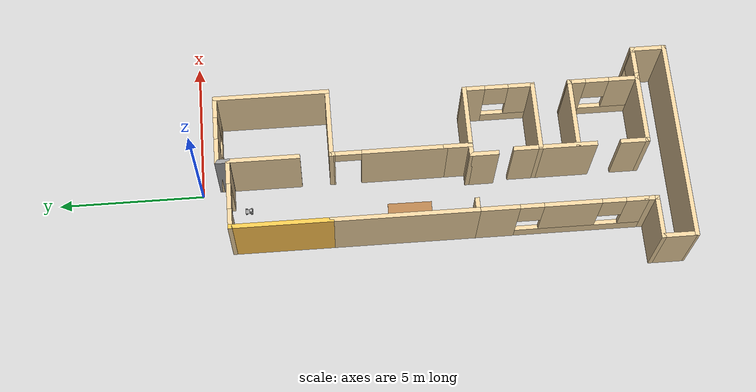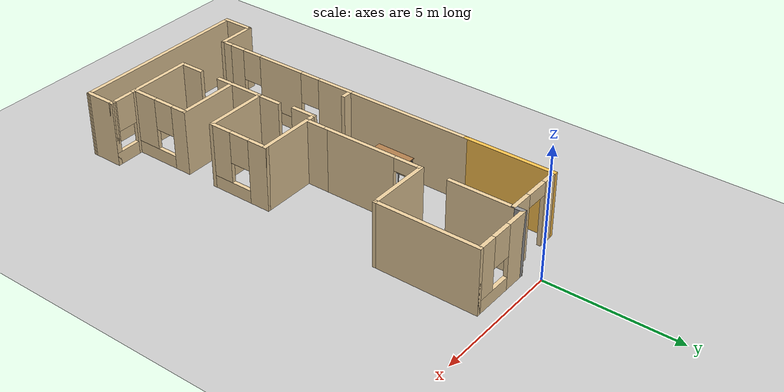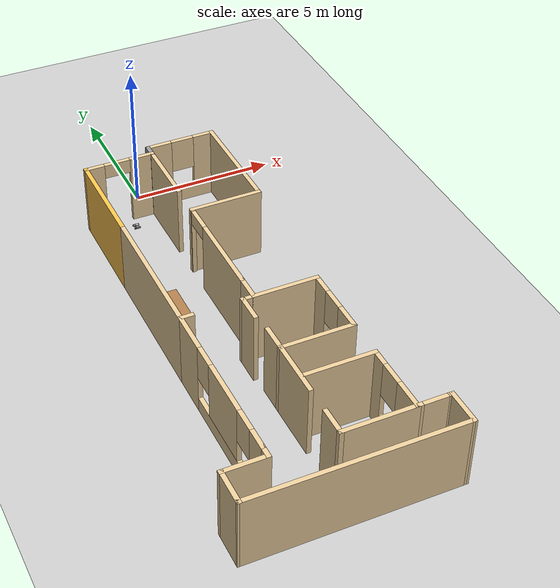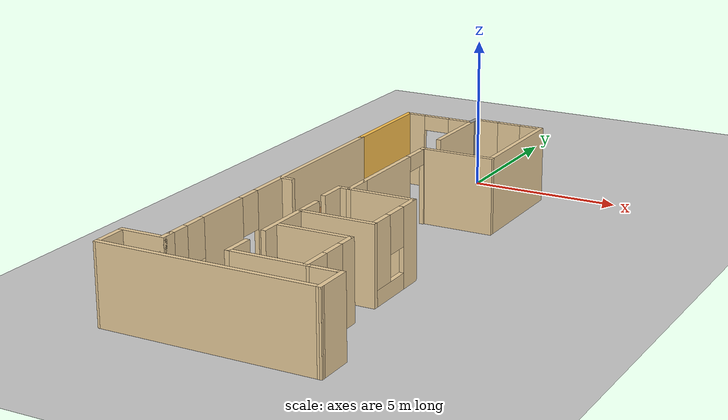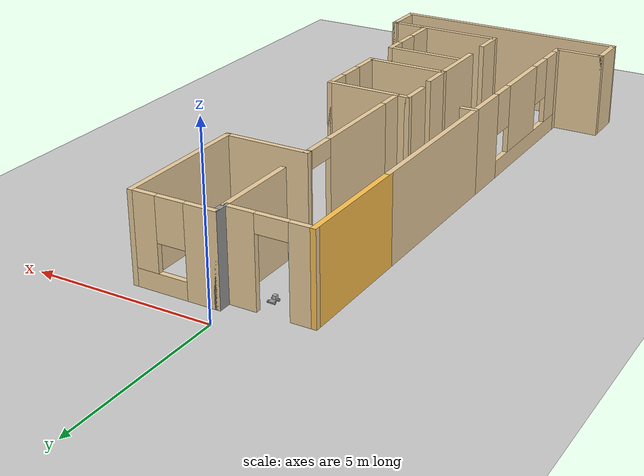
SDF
<sdf version="1.6">
 <world name="default">
  <model name="ground_plane">
   <static>1</static>
   <link name="link">
    <collision name="collision">
     <geometry><plane><normal>0 0 1</normal><size>100 100</size></plane></geometry>
     <surface><friction><ode><mu>100</mu><mu2>50</mu2></ode></friction></surface>
    </collision>
    <visual name="visual">
     <cast_shadows>0</cast_shadows>
     <geometry><plane><normal>0 0 1</normal><size>100 100</size></plane></geometry>
     <material>
      <script><uri>file://media/materials/scripts/gazebo.material</uri><name>Gazebo/Grey</name></script>
     </material>
    </visual>
   </link>
  </model>
  <model name="my_appartment">
   <pose>-0.015 -8.49511 0 0 -0 0</pose>
   <link name="Wall_1">
    <pose>-0.93 7.45511 0 0 -0 0</pose>
    <visual name="Wall_1_Visual_0">
     <pose>-0.8975 0 1.25 0 -0 0</pose>
     <geometry><box><size>0.705 0.15 2.5</size></box></geometry>
     <material>
      <script><uri>file://media/materials/scripts/gazebo.material</uri><name>Gazebo/Grey</name></script>
      <ambient>0.921569 0.807843 0.615686 1</ambient>
     </material>
     <meta><layer>0</layer></meta>
    </visual>
    <collision name="Wall_1_Collision_0">
     <geometry><box><size>0.705 0.15 2.5</size></box></geometry>
     <pose>-0.8975 0 1.25 0 -0 0</pose>
    </collision>
    <visual name="Wall_1_Visual_1">
     <pose>0.8025 0 1.25 0 -0 0</pose>
     <geometry><box><size>0.895 0.15 2.5</size></box></geometry>
     <material>
      <script><uri>file://media/materials/scripts/gazebo.material</uri><name>Gazebo/Grey</name></script>
      <ambient>0.921569 0.807843 0.615686 1</ambient>
     </material>
     <meta><layer>0</layer></meta>
    </visual>
    <collision name="Wall_1_Collision_1">
     <geometry><box><size>0.895 0.15 2.5</size></box></geometry>
     <pose>0.8025 0 1.25 0 -0 0</pose>
    </collision>
    <visual name="Wall_1_Visual_2">
     <pose>-0.095 0 2.25 0 -0 0</pose>
     <geometry><box><size>0.9 0.15 0.5</size></box></geometry>
     <material>
      <script><uri>file://media/materials/scripts/gazebo.material</uri><name>Gazebo/Grey</name></script>
      <ambient>0.921569 0.807843 0.615686 1</ambient>
     </material>
     <meta><layer>0</layer></meta>
    </visual>
    <collision name="Wall_1_Collision_2">
     <geometry><box><size>0.9 0.15 0.5</size></box></geometry>
     <pose>-0.095 0 2.25 0 -0 0</pose>
    </collision>
   </link>
   <link name="Wall_11">
    <pose>0.245 2.04011 0 0 0 -1.5708</pose>
    <visual name="Wall_11_Visual_0">
     <pose>-1.9025 0 1.25 0 -0 0</pose>
     <geometry><box><size>0.195 0.15 2.5</size></box></geometry>
     <material>
      <script><uri>file://media/materials/scripts/gazebo.material</uri><name>Gazebo/Grey</name></script>
      <ambient>0.921569 0.807843 0.615686 1</ambient>
     </material>
     <meta><layer>0</layer></meta>
    </visual>
    <collision name="Wall_11_Collision_0">
     <geometry><box><size>0.195 0.15 2.5</size></box></geometry>
     <pose>-1.9025 0 1.25 0 -0 0</pose>
    </collision>
    <visual name="Wall_11_Visual_1">
     <pose>0.5475 0 1.25 0 -0 0</pose>
     <geometry><box><size>2.905 0.15 2.5</size></box></geometry>
     <material>
      <script><uri>file://media/materials/scripts/gazebo.material</uri><name>Gazebo/Grey</name></script>
      <ambient>0.921569 0.807843 0.615686 1</ambient>
     </material>
     <meta><layer>0</layer></meta>
    </visual>
    <collision name="Wall_11_Collision_1">
     <geometry><box><size>2.905 0.15 2.5</size></box></geometry>
     <pose>0.5475 0 1.25 0 -0 0</pose>
    </collision>
    <visual name="Wall_11_Visual_2">
     <pose>-1.355 0 2.25 0 -0 0</pose>
     <geometry><box><size>0.9 0.15 0.5</size></box></geometry>
     <material>
      <script><uri>file://media/materials/scripts/gazebo.material</uri><name>Gazebo/Grey</name></script>
      <ambient>0.921569 0.807843 0.615686 1</ambient>
     </material>
     <meta><layer>0</layer></meta>
    </visual>
    <collision name="Wall_11_Collision_2">
     <geometry><box><size>0.9 0.15 0.5</size></box></geometry>
     <pose>-1.355 0 2.25 0 -0 0</pose>
    </collision>
   </link>
   <link name="Wall_13">
    <collision name="Wall_13_Collision">
     <geometry><box><size>1 0.15 2.5</size></box></geometry>
     <pose>0 0 1.25 0 -0 0</pose>
    </collision>
    <visual name="Wall_13_Visual">
     <pose>0 0 1.25 0 -0 0</pose>
     <geometry><box><size>1 0.15 2.5</size></box></geometry>
     <material>
      <script><uri>file://media/materials/scripts/gazebo.material</uri><name>Gazebo/Grey</name></script>
      <ambient>0.921569 0.807843 0.615686 1</ambient>
     </material>
     <meta><layer>0</layer></meta>
    </visual>
    <pose>0.245 -0.309893 0 0 0 -1.5708</pose>
   </link>
   <link name="Wall_15">
    <collision name="Wall_15_Collision">
     <geometry><box><size>3.5 0.15 2.5</size></box></geometry>
     <pose>0 0 1.25 0 -0 0</pose>
    </collision>
    <visual name="Wall_15_Visual">
     <pose>0 0 1.25 0 -0 0</pose>
     <geometry><box><size>3.5 0.15 2.5</size></box></geometry>
     <material>
      <script><uri>file://media/materials/scripts/gazebo.material</uri><name>Gazebo/Grey</name></script>
      <ambient>1 0.764706 0.305882 1</ambient>
     </material>
     <meta><layer>0</layer></meta>
    </visual>
    <pose>-2.105 5.78011 0 0 0 -1.5708</pose>
   </link>
   <link name="Wall_18">
    <collision name="Wall_18_Collision">
     <geometry><box><size>5 0.15 2.5</size></box></geometry>
     <pose>0 0 1.25 0 -0 0</pose>
    </collision>
    <visual name="Wall_18_Visual">
     <pose>0 0 1.25 0 -0 0</pose>
     <geometry><box><size>5 0.15 2.5</size></box></geometry>
     <material>
      <script><uri>file://media/materials/scripts/gazebo.material</uri><name>Gazebo/Grey</name></script>
      <ambient>0.921569 0.807843 0.615686 1</ambient>
     </material>
     <meta><layer>0</layer></meta>
    </visual>
    <pose>-2.105 1.68011 0 0 0 -1.5708</pose>
   </link>
   <link name="Wall_19">
    <collision name="Wall_19_Collision">
     <geometry><box><size>0.5 0.15 2.5</size></box></geometry>
     <pose>0 0 1.25 0 -0 0</pose>
    </collision>
    <visual name="Wall_19_Visual">
     <pose>0 0 1.25 0 -0 0</pose>
     <geometry><box><size>0.5 0.15 2.5</size></box></geometry>
     <material>
      <script><uri>file://media/materials/scripts/gazebo.material</uri><name>Gazebo/Grey</name></script>
      <ambient>0.921569 0.807843 0.615686 1</ambient>
     </material>
     <meta><layer>0</layer></meta>
    </visual>
    <pose>-1.93 -0.744892 0 0 -0 0</pose>
   </link>
   <link name="Wall_2">
    <collision name="Wall_2_Collision">
     <geometry><box><size>0.52 0.15 2.5</size></box></geometry>
     <pose>0 0 1.25 0 -0 0</pose>
    </collision>
    <visual name="Wall_2_Visual">
     <pose>0 0 1.25 0 -0 0</pose>
     <geometry><box><size>0.52 0.15 2.5</size></box></geometry>
     <material>
      <script><uri>file://media/materials/scripts/gazebo.material</uri><name>Gazebo/Grey</name></script>
      <ambient>1 1 1 1</ambient>
     </material>
     <meta><layer>0</layer></meta>
    </visual>
    <pose>0.245 7.63011 0 0 -0 1.5708</pose>
   </link>
   <link name="Wall_21">
    <collision name="Wall_21_Collision">
     <geometry><box><size>0.5 0.15 2.5</size></box></geometry>
     <pose>0 0 1.25 0 -0 0</pose>
    </collision>
    <visual name="Wall_21_Visual">
     <pose>0 0 1.25 0 -0 0</pose>
     <geometry><box><size>0.5 0.15 2.5</size></box></geometry>
     <material>
      <script><uri>file://media/materials/scripts/gazebo.material</uri><name>Gazebo/Grey</name></script>
      <ambient>0.921569 0.807843 0.615686 1</ambient>
     </material>
     <meta><layer>0</layer></meta>
    </visual>
    <pose>0.07 -0.734892 0 0 -0 3.14159</pose>
   </link>
   <link name="Wall_23">
    <collision name="Wall_23_Collision">
     <geometry><box><size>1 0.15 2.5</size></box></geometry>
     <pose>0 0 1.25 0 -0 0</pose>
    </collision>
    <visual name="Wall_23_Visual">
     <pose>0 0 1.25 0 -0 0</pose>
     <geometry><box><size>1 0.15 2.5</size></box></geometry>
     <material>
      <script><uri>file://media/materials/scripts/gazebo.material</uri><name>Gazebo/Grey</name></script>
      <ambient>0.921569 0.807843 0.615686 1</ambient>
     </material>
     <meta><layer>0</layer></meta>
    </visual>
    <pose>-0.105 -1.15989 0 0 0 -1.5708</pose>
   </link>
   <link name="Wall_25">
    <collision name="Wall_25_Collision">
     <geometry><box><size>2.25 0.15 2.5</size></box></geometry>
     <pose>0 0 1.25 0 -0 0</pose>
    </collision>
    <visual name="Wall_25_Visual">
     <pose>0 0 1.25 0 -0 0</pose>
     <geometry><box><size>2.25 0.15 2.5</size></box></geometry>
     <material>
      <script><uri>file://media/materials/scripts/gazebo.material</uri><name>Gazebo/Grey</name></script>
      <ambient>0.921569 0.807843 0.615686 1</ambient>
     </material>
     <meta><layer>0</layer></meta>
    </visual>
    <pose>1.295 -0.734892 0 0 -0 0</pose>
   </link>
   <link name="Wall_26">
    <pose>2.345 -1.90989 0 0 0 -1.5708</pose>
    <visual name="Wall_26_Visual_0">
     <pose>-0.8575 0 1.25 0 -0 0</pose>
     <geometry><box><size>0.785 0.15 2.5</size></box></geometry>
     <material>
      <script><uri>file://media/materials/scripts/gazebo.material</uri><name>Gazebo/Grey</name></script>
      <ambient>0.921569 0.807843 0.615686 1</ambient>
     </material>
     <meta><layer>0</layer></meta>
    </visual>
    <collision name="Wall_26_Collision_0">
     <geometry><box><size>0.785 0.15 2.5</size></box></geometry>
     <pose>-0.8575 0 1.25 0 -0 0</pose>
    </collision>
    <visual name="Wall_26_Visual_1">
     <pose>0.3925 0 0.25 0 -0 0</pose>
     <geometry><box><size>1.715 0.15 0.5</size></box></geometry>
     <material>
      <script><uri>file://media/materials/scripts/gazebo.material</uri><name>Gazebo/Grey</name></script>
      <ambient>0.921569 0.807843 0.615686 1</ambient>
     </material>
     <meta><layer>0</layer></meta>
    </visual>
    <collision name="Wall_26_Collision_1">
     <geometry><box><size>1.715 0.15 0.5</size></box></geometry>
     <pose>0.3925 0 0.25 0 -0 0</pose>
    </collision>
    <visual name="Wall_26_Visual_2">
     <pose>0.7925 0 1.5 0 -0 0</pose>
     <geometry><box><size>0.915 0.15 2</size></box></geometry>
     <material>
      <script><uri>file://media/materials/scripts/gazebo.material</uri><name>Gazebo/Grey</name></script>
      <ambient>0.921569 0.807843 0.615686 1</ambient>
     </material>
     <meta><layer>0</layer></meta>
    </visual>
    <collision name="Wall_26_Collision_2">
     <geometry><box><size>0.915 0.15 2</size></box></geometry>
     <pose>0.7925 0 1.5 0 -0 0</pose>
    </collision>
    <visual name="Wall_26_Visual_3">
     <pose>-0.065 0 1.9 0 -0 0</pose>
     <geometry><box><size>0.8 0.15 1.2</size></box></geometry>
     <material>
      <script><uri>file://media/materials/scripts/gazebo.material</uri><name>Gazebo/Grey</name></script>
      <ambient>0.921569 0.807843 0.615686 1</ambient>
     </material>
     <meta><layer>0</layer></meta>
    </visual>
    <collision name="Wall_26_Collision_3">
     <geometry><box><size>0.8 0.15 1.2</size></box></geometry>
     <pose>-0.065 0 1.9 0 -0 0</pose>
    </collision>
   </link>
   <link name="Wall_29">
    <collision name="Wall_29_Collision">
     <geometry><box><size>2.5 0.15 2.5</size></box></geometry>
     <pose>0 0 1.25 0 -0 0</pose>
    </collision>
    <visual name="Wall_29_Visual">
     <pose>0 0 1.25 0 -0 0</pose>
     <geometry><box><size>2.5 0.15 2.5</size></box></geometry>
     <material>
      <script><uri>file://media/materials/scripts/gazebo.material</uri><name>Gazebo/Grey</name></script>
      <ambient>0.921569 0.807843 0.615686 1</ambient>
     </material>
     <meta><layer>0</layer></meta>
    </visual>
    <pose>1.17 -3.08489 0 0 -0 3.14159</pose>
   </link>
   <link name="Wall_30">
    <collision name="Wall_30_Collision">
     <geometry><box><size>1 0.15 2.5</size></box></geometry>
     <pose>0 0 1.25 0 -0 0</pose>
    </collision>
    <visual name="Wall_30_Visual">
     <pose>0 0 1.25 0 -0 0</pose>
     <geometry><box><size>1 0.15 2.5</size></box></geometry>
     <material>
      <script><uri>file://media/materials/scripts/gazebo.material</uri><name>Gazebo/Grey</name></script>
      <ambient>0.921569 0.807843 0.615686 1</ambient>
     </material>
     <meta><layer>0</layer></meta>
    </visual>
    <pose>-0.005 -2.65989 0 0 -0 1.5708</pose>
   </link>
   <link name="Wall_32">
    <collision name="Wall_32_Collision">
     <geometry><box><size>2 0.15 2.5</size></box></geometry>
     <pose>0 0 1.25 0 -0 0</pose>
    </collision>
    <visual name="Wall_32_Visual">
     <pose>0 0 1.25 0 -0 0</pose>
     <geometry><box><size>2 0.15 2.5</size></box></geometry>
     <material>
      <script><uri>file://media/materials/scripts/gazebo.material</uri><name>Gazebo/Grey</name></script>
      <ambient>0.921569 0.807843 0.615686 1</ambient>
     </material>
     <meta><layer>0</layer></meta>
    </visual>
    <pose>-0.005 -4.00989 0 0 0 -1.5708</pose>
   </link>
   <link name="Wall_34">
    <collision name="Wall_34_Collision">
     <geometry><box><size>2.5 0.15 2.5</size></box></geometry>
     <pose>0 0 1.25 0 -0 0</pose>
    </collision>
    <visual name="Wall_34_Visual">
     <pose>0 0 1.25 0 -0 0</pose>
     <geometry><box><size>2.5 0.15 2.5</size></box></geometry>
     <material>
      <script><uri>file://media/materials/scripts/gazebo.material</uri><name>Gazebo/Grey</name></script>
      <ambient>0.921569 0.807843 0.615686 1</ambient>
     </material>
     <meta><layer>0</layer></meta>
    </visual>
    <pose>1.18 -4.36489 0 0 -0 0</pose>
   </link>
   <link name="Wall_36">
    <pose>2.355 -5.53989 0 0 0 -1.5708</pose>
    <visual name="Wall_36_Visual_0">
     <pose>-0.9325 0 1.25 0 -0 0</pose>
     <geometry><box><size>0.635 0.15 2.5</size></box></geometry>
     <material>
      <script><uri>file://media/materials/scripts/gazebo.material</uri><name>Gazebo/Grey</name></script>
      <ambient>0.921569 0.807843 0.615686 1</ambient>
     </material>
     <meta><layer>0</layer></meta>
    </visual>
    <collision name="Wall_36_Collision_0">
     <geometry><box><size>0.635 0.15 2.5</size></box></geometry>
     <pose>-0.9325 0 1.25 0 -0 0</pose>
    </collision>
    <visual name="Wall_36_Visual_1">
     <pose>0.3175 0 0.25 0 -0 0</pose>
     <geometry><box><size>1.865 0.15 0.5</size></box></geometry>
     <material>
      <script><uri>file://media/materials/scripts/gazebo.material</uri><name>Gazebo/Grey</name></script>
      <ambient>0.921569 0.807843 0.615686 1</ambient>
     </material>
     <meta><layer>0</layer></meta>
    </visual>
    <collision name="Wall_36_Collision_1">
     <geometry><box><size>1.865 0.15 0.5</size></box></geometry>
     <pose>0.3175 0 0.25 0 -0 0</pose>
    </collision>
    <visual name="Wall_36_Visual_2">
     <pose>0.7175 0 1.5 0 -0 0</pose>
     <geometry><box><size>1.065 0.15 2</size></box></geometry>
     <material>
      <script><uri>file://media/materials/scripts/gazebo.material</uri><name>Gazebo/Grey</name></script>
      <ambient>0.921569 0.807843 0.615686 1</ambient>
     </material>
     <meta><layer>0</layer></meta>
    </visual>
    <collision name="Wall_36_Collision_2">
     <geometry><box><size>1.065 0.15 2</size></box></geometry>
     <pose>0.7175 0 1.5 0 -0 0</pose>
    </collision>
    <visual name="Wall_36_Visual_3">
     <pose>-0.215 0 1.9 0 -0 0</pose>
     <geometry><box><size>0.8 0.15 1.2</size></box></geometry>
     <material>
      <script><uri>file://media/materials/scripts/gazebo.material</uri><name>Gazebo/Grey</name></script>
      <ambient>0.921569 0.807843 0.615686 1</ambient>
     </material>
     <meta><layer>0</layer></meta>
    </visual>
    <collision name="Wall_36_Collision_3">
     <geometry><box><size>0.8 0.15 1.2</size></box></geometry>
     <pose>-0.215 0 1.9 0 -0 0</pose>
    </collision>
   </link>
   <link name="Wall_37">
    <collision name="Wall_37_Collision">
     <geometry><box><size>2.5 0.15 2.5</size></box></geometry>
     <pose>0 0 1.25 0 -0 0</pose>
    </collision>
    <visual name="Wall_37_Visual">
     <pose>0 0 1.25 0 -0 0</pose>
     <geometry><box><size>2.5 0.15 2.5</size></box></geometry>
     <material>
      <script><uri>file://media/materials/scripts/gazebo.material</uri><name>Gazebo/Grey</name></script>
      <ambient>0.921569 0.807843 0.615686 1</ambient>
     </material>
     <meta><layer>0</layer></meta>
    </visual>
    <pose>1.18 -6.71489 0 0 -0 3.14159</pose>
   </link>
   <link name="Wall_38">
    <collision name="Wall_38_Collision">
     <geometry><box><size>1 0.15 2.5</size></box></geometry>
     <pose>0 0 1.25 0 -0 0</pose>
    </collision>
    <visual name="Wall_38_Visual">
     <pose>0 0 1.25 0 -0 0</pose>
     <geometry><box><size>1 0.15 2.5</size></box></geometry>
     <material>
      <script><uri>file://media/materials/scripts/gazebo.material</uri><name>Gazebo/Grey</name></script>
      <ambient>0.921569 0.807843 0.615686 1</ambient>
     </material>
     <meta><layer>0</layer></meta>
    </visual>
    <pose>0.005 -6.28989 0 0 -0 1.5708</pose>
   </link>
   <link name="Wall_4">
    <pose>1.42 7.81511 0 0 -0 0</pose>
    <visual name="Wall_4_Visual_0">
     <pose>-0.7925 0 1.25 0 -0 0</pose>
     <geometry><box><size>0.915 0.15 2.5</size></box></geometry>
     <material>
      <script><uri>file://media/materials/scripts/gazebo.material</uri><name>Gazebo/Grey</name></script>
      <ambient>0.921569 0.807843 0.615686 1</ambient>
     </material>
     <meta><layer>0</layer></meta>
    </visual>
    <collision name="Wall_4_Collision_0">
     <geometry><box><size>0.915 0.15 2.5</size></box></geometry>
     <pose>-0.7925 0 1.25 0 -0 0</pose>
    </collision>
    <visual name="Wall_4_Visual_1">
     <pose>0.4575 0 0.25 0 -0 0</pose>
     <geometry><box><size>1.585 0.15 0.5</size></box></geometry>
     <material>
      <script><uri>file://media/materials/scripts/gazebo.material</uri><name>Gazebo/Grey</name></script>
      <ambient>0.921569 0.807843 0.615686 1</ambient>
     </material>
     <meta><layer>0</layer></meta>
    </visual>
    <collision name="Wall_4_Collision_1">
     <geometry><box><size>1.585 0.15 0.5</size></box></geometry>
     <pose>0.4575 0 0.25 0 -0 0</pose>
    </collision>
    <visual name="Wall_4_Visual_2">
     <pose>0.8575 0 1.5 0 -0 0</pose>
     <geometry><box><size>0.785 0.15 2</size></box></geometry>
     <material>
      <script><uri>file://media/materials/scripts/gazebo.material</uri><name>Gazebo/Grey</name></script>
      <ambient>0.921569 0.807843 0.615686 1</ambient>
     </material>
     <meta><layer>0</layer></meta>
    </visual>
    <collision name="Wall_4_Collision_2">
     <geometry><box><size>0.785 0.15 2</size></box></geometry>
     <pose>0.8575 0 1.5 0 -0 0</pose>
    </collision>
    <visual name="Wall_4_Visual_3">
     <pose>0.065 0 1.9 0 -0 0</pose>
     <geometry><box><size>0.8 0.15 1.2</size></box></geometry>
     <material>
      <script><uri>file://media/materials/scripts/gazebo.material</uri><name>Gazebo/Grey</name></script>
      <ambient>0.921569 0.807843 0.615686 1</ambient>
     </material>
     <meta><layer>0</layer></meta>
    </visual>
    <collision name="Wall_4_Collision_3">
     <geometry><box><size>0.8 0.15 1.2</size></box></geometry>
     <pose>0.065 0 1.9 0 -0 0</pose>
    </collision>
   </link>
   <link name="Wall_40">
    <pose>-2.105 -3.54489 0 0 0 -1.5708</pose>
    <visual name="Wall_40_Visual_0">
     <pose>-2.1425 0 1.25 0 -0 0</pose>
     <geometry><box><size>1.465 0.15 2.5</size></box></geometry>
     <material>
      <script><uri>file://media/materials/scripts/gazebo.material</uri><name>Gazebo/Grey</name></script>
      <ambient>0.921569 0.807843 0.615686 1</ambient>
     </material>
     <meta><layer>0</layer></meta>
    </visual>
    <collision name="Wall_40_Collision_0">
     <geometry><box><size>1.465 0.15 2.5</size></box></geometry>
     <pose>-2.1425 0 1.25 0 -0 0</pose>
    </collision>
    <visual name="Wall_40_Visual_1">
     <pose>0.7325 0 0.25 0 -0 0</pose>
     <geometry><box><size>4.285 0.15 0.5</size></box></geometry>
     <material>
      <script><uri>file://media/materials/scripts/gazebo.material</uri><name>Gazebo/Grey</name></script>
      <ambient>0.921569 0.807843 0.615686 1</ambient>
     </material>
     <meta><layer>0</layer></meta>
    </visual>
    <collision name="Wall_40_Collision_1">
     <geometry><box><size>4.285 0.15 0.5</size></box></geometry>
     <pose>0.7325 0 0.25 0 -0 0</pose>
    </collision>
    <visual name="Wall_40_Visual_2">
     <pose>0.355 0 1.5 0 -0 0</pose>
     <geometry><box><size>1.93 0.15 2</size></box></geometry>
     <material>
      <script><uri>file://media/materials/scripts/gazebo.material</uri><name>Gazebo/Grey</name></script>
      <ambient>0.921569 0.807843 0.615686 1</ambient>
     </material>
     <meta><layer>0</layer></meta>
    </visual>
    <collision name="Wall_40_Collision_2">
     <geometry><box><size>1.93 0.15 2</size></box></geometry>
     <pose>0.355 0 1.5 0 -0 0</pose>
    </collision>
    <visual name="Wall_40_Visual_3">
     <pose>2.4975 0 1.5 0 -0 0</pose>
     <geometry><box><size>0.755 0.15 2</size></box></geometry>
     <material>
      <script><uri>file://media/materials/scripts/gazebo.material</uri><name>Gazebo/Grey</name></script>
      <ambient>0.921569 0.807843 0.615686 1</ambient>
     </material>
     <meta><layer>0</layer></meta>
    </visual>
    <collision name="Wall_40_Collision_3">
     <geometry><box><size>0.755 0.15 2</size></box></geometry>
     <pose>2.4975 0 1.5 0 -0 0</pose>
    </collision>
    <visual name="Wall_40_Visual_4">
     <pose>-1.01 0 1.9 0 -0 0</pose>
     <geometry><box><size>0.8 0.15 1.2</size></box></geometry>
     <material>
      <script><uri>file://media/materials/scripts/gazebo.material</uri><name>Gazebo/Grey</name></script>
      <ambient>0.921569 0.807843 0.615686 1</ambient>
     </material>
     <meta><layer>0</layer></meta>
    </visual>
    <collision name="Wall_40_Collision_4">
     <geometry><box><size>0.8 0.15 1.2</size></box></geometry>
     <pose>-1.01 0 1.9 0 -0 0</pose>
    </collision>
    <visual name="Wall_40_Visual_5">
     <pose>1.72 0 1.9 0 -0 0</pose>
     <geometry><box><size>0.8 0.15 1.2</size></box></geometry>
     <material>
      <script><uri>file://media/materials/scripts/gazebo.material</uri><name>Gazebo/Grey</name></script>
      <ambient>0.921569 0.807843 0.615686 1</ambient>
     </material>
     <meta><layer>0</layer></meta>
    </visual>
    <collision name="Wall_40_Collision_5">
     <geometry><box><size>0.8 0.15 1.2</size></box></geometry>
     <pose>1.72 0 1.9 0 -0 0</pose>
    </collision>
   </link>
   <link name="Wall_42">
    <collision name="Wall_42_Collision">
     <geometry><box><size>0.5 0.15 2.5</size></box></geometry>
     <pose>0 0 1.25 0 -0 0</pose>
    </collision>
    <visual name="Wall_42_Visual">
     <pose>0 0 1.25 0 -0 0</pose>
     <geometry><box><size>0.5 0.15 2.5</size></box></geometry>
     <material>
      <script><uri>file://media/materials/scripts/gazebo.material</uri><name>Gazebo/Grey</name></script>
      <ambient>0.921569 0.807843 0.615686 1</ambient>
     </material>
     <meta><layer>0</layer></meta>
    </visual>
    <pose>-2.105 -6.51989 0 0 0 -1.5708</pose>
   </link>
   <link name="Wall_44">
    <collision name="Wall_44_Collision">
     <geometry><box><size>1.5 0.15 2.5</size></box></geometry>
     <pose>0 0 1.25 0 -0 0</pose>
    </collision>
    <visual name="Wall_44_Visual">
     <pose>0 0 1.25 0 -0 0</pose>
     <geometry><box><size>1.5 0.15 2.5</size></box></geometry>
     <material>
      <script><uri>file://media/materials/scripts/gazebo.material</uri><name>Gazebo/Grey</name></script>
      <ambient>0.921569 0.807843 0.615686 1</ambient>
     </material>
     <meta><layer>0</layer></meta>
    </visual>
    <pose>-2.78 -6.69489 0 0 -0 3.14159</pose>
   </link>
   <link name="Wall_45">
    <collision name="Wall_45_Collision">
     <geometry><box><size>1.25 0.15 2.5</size></box></geometry>
     <pose>0 0 1.25 0 -0 0</pose>
    </collision>
    <visual name="Wall_45_Visual">
     <pose>0 0 1.25 0 -0 0</pose>
     <geometry><box><size>1.25 0.15 2.5</size></box></geometry>
     <material>
      <script><uri>file://media/materials/scripts/gazebo.material</uri><name>Gazebo/Grey</name></script>
      <ambient>0.921569 0.807843 0.615686 1</ambient>
     </material>
     <meta><layer>0</layer></meta>
    </visual>
    <pose>-3.455 -7.24489 0 0 0 -1.5708</pose>
   </link>
   <link name="Wall_47">
    <pose>2.905 -6.71489 0 0 -0 0</pose>
    <visual name="Wall_47_Visual_0">
     <pose>-0.5025 0 1.25 0 -0 0</pose>
     <geometry><box><size>0.245 0.15 2.5</size></box></geometry>
     <material>
      <script><uri>file://media/materials/scripts/gazebo.material</uri><name>Gazebo/Grey</name></script>
      <ambient>0.921569 0.807843 0.615686 1</ambient>
     </material>
     <meta><layer>0</layer></meta>
    </visual>
    <collision name="Wall_47_Collision_0">
     <geometry><box><size>0.245 0.15 2.5</size></box></geometry>
     <pose>-0.5025 0 1.25 0 -0 0</pose>
    </collision>
    <visual name="Wall_47_Visual_1">
     <pose>0.1225 0 0.25 0 -0 0</pose>
     <geometry><box><size>1.005 0.15 0.5</size></box></geometry>
     <material>
      <script><uri>file://media/materials/scripts/gazebo.material</uri><name>Gazebo/Grey</name></script>
      <ambient>0.921569 0.807843 0.615686 1</ambient>
     </material>
     <meta><layer>0</layer></meta>
    </visual>
    <collision name="Wall_47_Collision_1">
     <geometry><box><size>1.005 0.15 0.5</size></box></geometry>
     <pose>0.1225 0 0.25 0 -0 0</pose>
    </collision>
    <visual name="Wall_47_Visual_2">
     <pose>0.5225 0 1.5 0 -0 0</pose>
     <geometry><box><size>0.205 0.15 2</size></box></geometry>
     <material>
      <script><uri>file://media/materials/scripts/gazebo.material</uri><name>Gazebo/Grey</name></script>
      <ambient>0.921569 0.807843 0.615686 1</ambient>
     </material>
     <meta><layer>0</layer></meta>
    </visual>
    <collision name="Wall_47_Collision_2">
     <geometry><box><size>0.205 0.15 2</size></box></geometry>
     <pose>0.5225 0 1.5 0 -0 0</pose>
    </collision>
    <visual name="Wall_47_Visual_3">
     <pose>0.02 0 1.9 0 -0 0</pose>
     <geometry><box><size>0.8 0.15 1.2</size></box></geometry>
     <material>
      <script><uri>file://media/materials/scripts/gazebo.material</uri><name>Gazebo/Grey</name></script>
      <ambient>0.921569 0.807843 0.615686 1</ambient>
     </material>
     <meta><layer>0</layer></meta>
    </visual>
    <collision name="Wall_47_Collision_3">
     <geometry><box><size>0.8 0.15 1.2</size></box></geometry>
     <pose>0.02 0 1.9 0 -0 0</pose>
    </collision>
   </link>
   <link name="Wall_48">
    <collision name="Wall_48_Collision">
     <geometry><box><size>1.25 0.15 2.5</size></box></geometry>
     <pose>0 0 1.25 0 -0 0</pose>
    </collision>
    <visual name="Wall_48_Visual">
     <pose>0 0 1.25 0 -0 0</pose>
     <geometry><box><size>1.25 0.15 2.5</size></box></geometry>
     <material>
      <script><uri>file://media/materials/scripts/gazebo.material</uri><name>Gazebo/Grey</name></script>
      <ambient>0.921569 0.807843 0.615686 1</ambient>
     </material>
     <meta><layer>0</layer></meta>
    </visual>
    <pose>3.455 -7.26489 0 0 0 -1.5708</pose>
   </link>
   <link name="Wall_49">
    <collision name="Wall_49_Collision">
     <geometry><box><size>7.06003 0.15 2.5</size></box></geometry>
     <pose>0 0 1.25 0 -0 0</pose>
    </collision>
    <visual name="Wall_49_Visual">
     <pose>0 0 1.25 0 -0 0</pose>
     <geometry><box><size>7.06003 0.15 2.5</size></box></geometry>
     <material>
      <script><uri>file://media/materials/scripts/gazebo.material</uri><name>Gazebo/Grey</name></script>
      <ambient>0.921569 0.807843 0.615686 1</ambient>
     </material>
     <meta><layer>0</layer></meta>
    </visual>
    <pose>0 -7.80489 0 0 -0 3.1387</pose>
   </link>
   <link name="Wall_6">
    <collision name="Wall_6_Collision">
     <geometry><box><size>2.5 0.15 2.5</size></box></geometry>
     <pose>0 0 1.25 0 -0 0</pose>
    </collision>
    <visual name="Wall_6_Visual">
     <pose>0 0 1.25 0 -0 0</pose>
     <geometry><box><size>2.5 0.15 2.5</size></box></geometry>
     <material>
      <script><uri>file://media/materials/scripts/gazebo.material</uri><name>Gazebo/Grey</name></script>
      <ambient>0.921569 0.807843 0.615686 1</ambient>
     </material>
     <meta><layer>0</layer></meta>
    </visual>
    <pose>0.245 6.27011 0 0 0 -1.5708</pose>
   </link>
   <link name="Wall_8">
    <collision name="Wall_8_Collision">
     <geometry><box><size>4 0.15 2.5</size></box></geometry>
     <pose>0 0 1.25 0 -0 0</pose>
    </collision>
    <visual name="Wall_8_Visual">
     <pose>0 0 1.25 0 -0 0</pose>
     <geometry><box><size>4 0.15 2.5</size></box></geometry>
     <material>
      <script><uri>file://media/materials/scripts/gazebo.material</uri><name>Gazebo/Grey</name></script>
      <ambient>0.921569 0.807843 0.615686 1</ambient>
     </material>
     <meta><layer>0</layer></meta>
    </visual>
    <pose>2.595 5.89011 0 0 0 -1.5708</pose>
   </link>
   <link name="Wall_9">
    <collision name="Wall_9_Collision">
     <geometry><box><size>2.5 0.15 2.5</size></box></geometry>
     <pose>0 0 1.25 0 -0 0</pose>
    </collision>
    <visual name="Wall_9_Visual">
     <pose>0 0 1.25 0 -0 0</pose>
     <geometry><box><size>2.5 0.15 2.5</size></box></geometry>
     <material>
      <script><uri>file://media/materials/scripts/gazebo.material</uri><name>Gazebo/Grey</name></script>
      <ambient>0.921569 0.807843 0.615686 1</ambient>
     </material>
     <meta><layer>0</layer></meta>
    </visual>
    <pose>1.42 3.96511 0 0 -0 3.14159</pose>
   </link>
   <static>1</static>
  </model>
  <model name="robotic_car">
   <link name="link_2_clone">
    <pose>0.080306 0.090789 -0.004032 1.5707 -0 0</pose>
    <inertial>
     <mass>1</mass>
     <inertia><ixx>0.145833</ixx><ixy>0</ixy><ixz>0</ixz><iyy>0.145833</iyy><iyz>0</iyz><izz>0.125</izz></inertia>
    </inertial>
    <visual name="visual">
     <geometry><cylinder><radius>0.035</radius><length>0.03</length></cylinder></geometry>
     <material>
      <lighting>1</lighting>
      <script><uri>file://media/materials/scripts/gazebo.material</uri><name>Gazebo/Grey</name></script>
      <shader type="pixel"><normal_map>__default__</normal_map></shader>
      <ambient>0.3 0.3 0.3 1</ambient>
      <diffuse>0.7 0.7 0.7 1</diffuse>
      <specular>0.01 0.01 0.01 1</specular>
      <emissive>0 0 0 1</emissive>
     </material>
    </visual>
    <collision name="collision">
     <geometry><cylinder><radius>0.035</radius><length>0.03</length></cylinder></geometry>
     <surface>
      <friction>
       <ode><mu>1</mu><mu2>1</mu2><fdir1>0 0 0</fdir1><slip1>0</slip1><slip2>0</slip2></ode>
       <torsional>
        <coefficient>1</coefficient>
        <patch_radius>0</patch_radius>
        <surface_radius>0</surface_radius>
        <use_patch_radius>1</use_patch_radius>
        <ode><slip>0</slip></ode>
       </torsional>
      </friction>
      <bounce><restitution_coefficient>0</restitution_coefficient><threshold>1e+06</threshold></bounce>
      <contact>
       <collide_without_contact>0</collide_without_contact>
       <collide_without_contact_bitmask>1</collide_without_contact_bitmask>
       <collide_bitmask>1</collide_bitmask>
       <ode>
        <soft_cfm>0</soft_cfm>
        <soft_erp>0.2</soft_erp>
        <kp>1e+13</kp>
        <kd>1</kd>
        <max_vel>0.01</max_vel>
        <min_depth>0</min_depth>
       </ode>
       <bullet>
        <split_impulse>1</split_impulse>
        <split_impulse_penetration_threshold>-0.01</split_impulse_penetration_threshold>
        <soft_cfm>0</soft_cfm>
        <soft_erp>0.2</soft_erp>
        <kp>1e+13</kp>
        <kd>1</kd>
       </bullet>
      </contact>
     </surface>
    </collision>
   </link>
   <link name="link_2_clone_0">
    <pose>-0.099695 0.090789 -0.004032 1.5707 -0 0</pose>
    <inertial>
     <mass>1</mass>
     <inertia><ixx>0.145833</ixx><ixy>0</ixy><ixz>0</ixz><iyy>0.145833</iyy><iyz>0</iyz><izz>0.125</izz></inertia>
    </inertial>
    <visual name="visual">
     <geometry><cylinder><radius>0.035</radius><length>0.03</length></cylinder></geometry>
     <material>
      <lighting>1</lighting>
      <script><uri>file://media/materials/scripts/gazebo.material</uri><name>Gazebo/Grey</name></script>
      <shader type="pixel"><normal_map>__default__</normal_map></shader>
      <ambient>0.3 0.3 0.3 1</ambient>
      <diffuse>0.7 0.7 0.7 1</diffuse>
      <specular>0.01 0.01 0.01 1</specular>
      <emissive>0 0 0 1</emissive>
     </material>
    </visual>
    <collision name="collision">
     <geometry><cylinder><radius>0.035</radius><length>0.03</length></cylinder></geometry>
     <surface>
      <friction>
       <ode><mu>1</mu><mu2>1</mu2><fdir1>0 0 0</fdir1><slip1>0</slip1><slip2>0</slip2></ode>
       <torsional>
        <coefficient>1</coefficient>
        <patch_radius>0</patch_radius>
        <surface_radius>0</surface_radius>
        <use_patch_radius>1</use_patch_radius>
        <ode><slip>0</slip></ode>
       </torsional>
      </friction>
      <bounce><restitution_coefficient>0</restitution_coefficient><threshold>1e+06</threshold></bounce>
      <contact>
       <collide_without_contact>0</collide_without_contact>
       <collide_without_contact_bitmask>1</collide_without_contact_bitmask>
       <collide_bitmask>1</collide_bitmask>
       <ode>
        <soft_cfm>0</soft_cfm>
        <soft_erp>0.2</soft_erp>
        <kp>1e+13</kp>
        <kd>1</kd>
        <max_vel>0.01</max_vel>
        <min_depth>0</min_depth>
       </ode>
       <bullet>
        <split_impulse>1</split_impulse>
        <split_impulse_penetration_threshold>-0.01</split_impulse_penetration_threshold>
        <soft_cfm>0</soft_cfm>
        <soft_erp>0.2</soft_erp>
        <kp>1e+13</kp>
        <kd>1</kd>
       </bullet>
      </contact>
     </surface>
    </collision>
   </link>
   <link name="link_2_clone_1">
    <pose>-0.099695 -0.089218 -0.004032 1.5707 -0 0</pose>
    <inertial>
     <mass>1</mass>
     <inertia><ixx>0.145833</ixx><ixy>0</ixy><ixz>0</ixz><iyy>0.145833</iyy><iyz>0</iyz><izz>0.125</izz></inertia>
    </inertial>
    <visual name="visual">
     <geometry><cylinder><radius>0.035</radius><length>0.03</length></cylinder></geometry>
     <material>
      <lighting>1</lighting>
      <script><uri>file://media/materials/scripts/gazebo.material</uri><name>Gazebo/Grey</name></script>
      <shader type="pixel"><normal_map>__default__</normal_map></shader>
      <ambient>0.3 0.3 0.3 1</ambient>
      <diffuse>0.7 0.7 0.7 1</diffuse>
      <specular>0.01 0.01 0.01 1</specular>
      <emissive>0 0 0 1</emissive>
     </material>
    </visual>
    <collision name="collision">
     <geometry><cylinder><radius>0.035</radius><length>0.03</length></cylinder></geometry>
     <surface>
      <friction>
       <ode><mu>1</mu><mu2>1</mu2><fdir1>0 0 0</fdir1><slip1>0</slip1><slip2>0</slip2></ode>
       <torsional>
        <coefficient>1</coefficient>
        <patch_radius>0</patch_radius>
        <surface_radius>0</surface_radius>
        <use_patch_radius>1</use_patch_radius>
        <ode><slip>0</slip></ode>
       </torsional>
      </friction>
      <bounce><restitution_coefficient>0</restitution_coefficient><threshold>1e+06</threshold></bounce>
      <contact>
       <collide_without_contact>0</collide_without_contact>
       <collide_without_contact_bitmask>1</collide_without_contact_bitmask>
       <collide_bitmask>1</collide_bitmask>
       <ode>
        <soft_cfm>0</soft_cfm>
        <soft_erp>0.2</soft_erp>
        <kp>1e+13</kp>
        <kd>1</kd>
        <max_vel>0.01</max_vel>
        <min_depth>0</min_depth>
       </ode>
       <bullet>
        <split_impulse>1</split_impulse>
        <split_impulse_penetration_threshold>-0.01</split_impulse_penetration_threshold>
        <soft_cfm>0</soft_cfm>
        <soft_erp>0.2</soft_erp>
        <kp>1e+13</kp>
        <kd>1</kd>
       </bullet>
      </contact>
     </surface>
    </collision>
   </link>
   <link name="link_2_clone_1_clone">
    <pose>0.080306 -0.089218 -0.004032 1.5707 -0 0</pose>
    <inertial>
     <mass>1</mass>
     <inertia><ixx>0.145833</ixx><ixy>0</ixy><ixz>0</ixz><iyy>0.145833</iyy><iyz>0</iyz><izz>0.125</izz></inertia>
    </inertial>
    <visual name="visual">
     <geometry><cylinder><radius>0.035</radius><length>0.03</length></cylinder></geometry>
     <material>
      <lighting>1</lighting>
      <script><uri>file://media/materials/scripts/gazebo.material</uri><name>Gazebo/Grey</name></script>
      <shader type="pixel"><normal_map>__default__</normal_map></shader>
      <ambient>0.3 0.3 0.3 1</ambient>
      <diffuse>0.7 0.7 0.7 1</diffuse>
      <specular>0.01 0.01 0.01 1</specular>
      <emissive>0 0 0 1</emissive>
     </material>
    </visual>
    <collision name="collision">
     <geometry><cylinder><radius>0.035</radius><length>0.03</length></cylinder></geometry>
     <surface>
      <friction>
       <ode><mu>1</mu><mu2>1</mu2><fdir1>0 0 0</fdir1><slip1>0</slip1><slip2>0</slip2></ode>
       <torsional>
        <coefficient>1</coefficient>
        <patch_radius>0</patch_radius>
        <surface_radius>0</surface_radius>
        <use_patch_radius>1</use_patch_radius>
        <ode><slip>0</slip></ode>
       </torsional>
      </friction>
      <bounce><restitution_coefficient>0</restitution_coefficient><threshold>1e+06</threshold></bounce>
      <contact>
       <collide_without_contact>0</collide_without_contact>
       <collide_without_contact_bitmask>1</collide_without_contact_bitmask>
       <collide_bitmask>1</collide_bitmask>
       <ode>
        <soft_cfm>0</soft_cfm>
        <soft_erp>0.2</soft_erp>
        <kp>1e+13</kp>
        <kd>1</kd>
        <max_vel>0.01</max_vel>
        <min_depth>0</min_depth>
       </ode>
       <bullet>
        <split_impulse>1</split_impulse>
        <split_impulse_penetration_threshold>-0.01</split_impulse_penetration_threshold>
        <soft_cfm>0</soft_cfm>
        <soft_erp>0.2</soft_erp>
        <kp>1e+13</kp>
        <kd>1</kd>
       </bullet>
      </contact>
     </surface>
    </collision>
   </link>
   <link name="link_3_clone_0">
    <pose>-0.009695 0.000786 -0.004032 0 -0 0</pose>
    <inertial>
     <mass>1</mass>
     <inertia>
      <ixx>0.166667</ixx>
      <ixy>0</ixy>
      <ixz>0</ixz>
      <iyy>0.166667</iyy>
      <iyz>0</iyz>
      <izz>0.166667</izz>
     </inertia>
    </inertial>
    <visual name="visual">
     <geometry><box><size>0.25 0.15 0.035</size></box></geometry>
     <material>
      <lighting>1</lighting>
      <script><uri>file://media/materials/scripts/gazebo.material</uri><name>Gazebo/Grey</name></script>
      <shader type="pixel"><normal_map>__default__</normal_map></shader>
      <ambient>0.3 0.3 0.3 1</ambient>
      <diffuse>0.7 0.7 0.7 1</diffuse>
      <specular>0.01 0.01 0.01 1</specular>
      <emissive>0 0 0 1</emissive>
     </material>
    </visual>
    <collision name="collision">
     <geometry><box><size>0.25 0.15 0.035</size></box></geometry>
     <surface>
      <friction>
       <ode><mu>1</mu><mu2>1</mu2><fdir1>0 0 0</fdir1><slip1>0</slip1><slip2>0</slip2></ode>
       <torsional>
        <coefficient>1</coefficient>
        <patch_radius>0</patch_radius>
        <surface_radius>0</surface_radius>
        <use_patch_radius>1</use_patch_radius>
        <ode><slip>0</slip></ode>
       </torsional>
      </friction>
      <bounce><restitution_coefficient>0</restitution_coefficient><threshold>1e+06</threshold></bounce>
      <contact>
       <collide_without_contact>0</collide_without_contact>
       <collide_without_contact_bitmask>1</collide_without_contact_bitmask>
       <collide_bitmask>1</collide_bitmask>
       <ode>
        <soft_cfm>0</soft_cfm>
        <soft_erp>0.2</soft_erp>
        <kp>1e+13</kp>
        <kd>1</kd>
        <max_vel>0.01</max_vel>
        <min_depth>0</min_depth>
       </ode>
       <bullet>
        <split_impulse>1</split_impulse>
        <split_impulse_penetration_threshold>-0.01</split_impulse_penetration_threshold>
        <soft_cfm>0</soft_cfm>
        <soft_erp>0.2</soft_erp>
        <kp>1e+13</kp>
        <kd>1</kd>
       </bullet>
      </contact>
     </surface>
    </collision>
   </link>
   <model name="depth_camera">
    <link name="link">
     <pose>0 0 0.05 0 -0 0</pose>
     <inertial>
      <mass>0.1</mass>
      <inertia>
       <ixx>0.000166667</ixx>
       <iyy>0.000166667</iyy>
       <izz>0.000166667</izz>
       <ixy>0</ixy>
       <ixz>0</ixz>
       <iyz>0</iyz>
      </inertia>
     </inertial>
     <collision name="collision"><geometry><box><size>0.1 0.1 0.1</size></box></geometry></collision>
     <visual name="visual"><geometry><box><size>0.1 0.1 0.1</size></box></geometry></visual>
     <sensor name="camera" type="depth">
      <camera name="__default__">
       <horizontal_fov>1.047</horizontal_fov>
       <image><width>320</width><height>240</height></image>
       <clip><near>0.1</near><far>100</far></clip>
      </camera>
      <always_on>1</always_on>
      <update_rate>30</update_rate>
      <visualize>1</visualize>
     </sensor>
    </link>
    <pose>0.048473 -0.003928 0.020159 0 -0 0</pose>
   </model>
   <joint name="link_3_clone_0_JOINT_2" type="revolute">
    <parent>link_3_clone_0</parent>
    <child>link_2_clone_1_clone</child>
    <axis>
     <xyz>0 0 1</xyz>
     <use_parent_model_frame>0</use_parent_model_frame>
     <limit>
      <lower>-1.79769e+308</lower>
      <upper>1.79769e+308</upper>
      <effort>-1</effort>
      <velocity>-1</velocity>
     </limit>
     <dynamics>
      <spring_reference>0</spring_reference>
      <spring_stiffness>0</spring_stiffness>
      <damping>0</damping>
      <friction>0</friction>
     </dynamics>
    </axis>
    <physics>
     <ode><limit><cfm>0</cfm><erp>0.2</erp></limit><suspension><cfm>0</cfm><erp>0.2</erp></suspension></ode>
    </physics>
   </joint>
   <joint name="link_3_clone_0_JOINT_3" type="revolute">
    <parent>link_3_clone_0</parent>
    <child>link_2_clone</child>
    <axis>
     <xyz>0 0 1</xyz>
     <use_parent_model_frame>0</use_parent_model_frame>
     <limit>
      <lower>-1.79769e+308</lower>
      <upper>1.79769e+308</upper>
      <effort>-1</effort>
      <velocity>-1</velocity>
     </limit>
     <dynamics>
      <spring_reference>0</spring_reference>
      <spring_stiffness>0</spring_stiffness>
      <damping>0</damping>
     </dynamics>
    </axis>
    <physics>
     <ode><limit><cfm>0</cfm><erp>0.2</erp></limit><suspension><cfm>0</cfm><erp>0.2</erp></suspension></ode>
    </physics>
   </joint>
   <joint name="link_3_clone_0_JOINT_4" type="revolute">
    <parent>link_3_clone_0</parent>
    <child>link_2_clone_1</child>
    <axis>
     <xyz>0 0 1</xyz>
     <use_parent_model_frame>0</use_parent_model_frame>
     <limit>
      <lower>-1.79769e+308</lower>
      <upper>1.79769e+308</upper>
      <effort>-1</effort>
      <velocity>-1</velocity>
     </limit>
     <dynamics>
      <spring_reference>0</spring_reference>
      <spring_stiffness>0</spring_stiffness>
      <damping>0</damping>
     </dynamics>
    </axis>
    <physics>
     <ode><limit><cfm>0</cfm><erp>0.2</erp></limit><suspension><cfm>0</cfm><erp>0.2</erp></suspension></ode>
    </physics>
   </joint>
   <joint name="link_3_clone_0_JOINT_5" type="revolute">
    <parent>link_3_clone_0</parent>
    <child>link_2_clone_0</child>
    <axis>
     <xyz>0 0 1</xyz>
     <use_parent_model_frame>0</use_parent_model_frame>
     <limit>
      <lower>-1.79769e+308</lower>
      <upper>1.79769e+308</upper>
      <effort>-1</effort>
      <velocity>-1</velocity>
     </limit>
     <dynamics>
      <spring_reference>0</spring_reference>
      <spring_stiffness>0</spring_stiffness>
      <damping>0</damping>
      <friction>0</friction>
     </dynamics>
    </axis>
    <physics>
     <ode><limit><cfm>0</cfm><erp>0.2</erp></limit><suspension><cfm>0</cfm><erp>0.2</erp></suspension></ode>
    </physics>
   </joint>
   <joint name="link_3_clone_0_JOINT_6" type="fixed">
    <parent>link_3_clone_0</parent>
    <child>depth_camera::link</child>
    <physics>
     <ode><limit><cfm>0</cfm><erp>0.2</erp></limit><suspension><cfm>0</cfm><erp>0.2</erp></suspension></ode>
    </physics>
   </joint>
   <static>0</static>
   <pose>-0.658079 -1.58223 0.038205 0.010308 6e-05 -1.57509</pose>
  </model>
  <model name="table">
   <static>1</static>
   <link name="link">
    <collision name="surface">
     <pose>0 0 1 0 -0 0</pose>
     <geometry><box><size>1.5 0.8 0.03</size></box></geometry>
     <surface><friction><ode><mu>0.6</mu><mu2>0.6</mu2></ode></friction></surface>
    </collision>
    <visual name="visual1">
     <pose>0 0 1 0 -0 0</pose>
     <geometry><box><size>1.5 0.8 0.03</size></box></geometry>
     <material>
      <script><uri>file://media/materials/scripts/gazebo.material</uri><name>Gazebo/Wood</name></script>
     </material>
    </visual>
    <collision name="front_left_leg">
     <pose>0.68 0.38 0.5 0 -0 0</pose>
     <geometry><cylinder><radius>0.02</radius><length>1</length></cylinder></geometry>
    </collision>
    <visual name="front_left_leg">
     <pose>0.68 0.38 0.5 0 -0 0</pose>
     <geometry><cylinder><radius>0.02</radius><length>1</length></cylinder></geometry>
     <material>
      <script><uri>file://media/materials/scripts/gazebo.material</uri><name>Gazebo/Grey</name></script>
     </material>
    </visual>
    <collision name="front_right_leg">
     <pose>0.68 -0.38 0.5 0 -0 0</pose>
     <geometry><cylinder><radius>0.02</radius><length>1</length></cylinder></geometry>
    </collision>
    <visual name="front_right_leg">
     <pose>0.68 -0.38 0.5 0 -0 0</pose>
     <geometry><cylinder><radius>0.02</radius><length>1</length></cylinder></geometry>
     <material>
      <script><uri>file://media/materials/scripts/gazebo.material</uri><name>Gazebo/Grey</name></script>
     </material>
    </visual>
    <collision name="back_right_leg">
     <pose>-0.68 -0.38 0.5 0 -0 0</pose>
     <geometry><cylinder><radius>0.02</radius><length>1</length></cylinder></geometry>
    </collision>
    <visual name="back_right_leg">
     <pose>-0.68 -0.38 0.5 0 -0 0</pose>
     <geometry><cylinder><radius>0.02</radius><length>1</length></cylinder></geometry>
     <material>
      <script><uri>file://media/materials/scripts/gazebo.material</uri><name>Gazebo/Grey</name></script>
     </material>
    </visual>
    <collision name="back_left_leg">
     <pose>-0.68 0.38 0.5 0 -0 0</pose>
     <geometry><cylinder><radius>0.02</radius><length>1</length></cylinder></geometry>
    </collision>
    <visual name="back_left_leg">
     <pose>-0.68 0.38 0.5 0 -0 0</pose>
     <geometry><cylinder><radius>0.02</radius><length>1</length></cylinder></geometry>
     <material>
      <script><uri>file://media/materials/scripts/gazebo.material</uri><name>Gazebo/Grey</name></script>
     </material>
    </visual>
   </link>
   <pose>-1.52354 -7.09409 0 0 -0 1.56264</pose>
  </model>
 </world>
</sdf>
